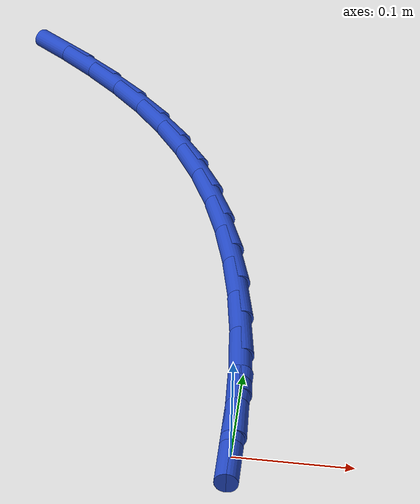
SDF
<sdf version="1.6">
 <world name="default">
  <model name="ground_plane">
   <static>1</static>
   <link name="link">
    <collision name="collision">
     <geometry><plane><normal>0 0 1</normal><size>100 100</size></plane></geometry>
     <surface><friction><ode><mu>100</mu><mu2>50</mu2></ode></friction></surface>
    </collision>
    <visual name="visual">
     <cast_shadows>0</cast_shadows>
     <geometry><plane><normal>0 0 1</normal><size>100 100</size></plane></geometry>
     <material>
      <script><uri>file://media/materials/scripts/gazebo.material</uri><name>Gazebo/WhiteGlow</name></script>
     </material>
    </visual>
   </link>
  </model>
  <model name="line">
   <link name="link_0">
    <pose>2.6020852139652106e-17 5.551115123125783e-17 0.01 0 1.57 -1.5619485043957753</pose>
    <collision name="collision">
     <geometry><cylinder><radius>0.01</radius><length>0.08</length></cylinder></geometry>
    </collision>
    <visual name="visual">
     <material>
      <script><name>Gazebo/Blue</name><uri>file://media/materials/scripts/gazebo.material</uri></script>
     </material>
     <geometry><cylinder><radius>0.01</radius><length>0.08</length></cylinder></geometry>
    </visual>
   </link>
   <link name="link_1">
    <pose>-0.00045022236933538456 0.050883776885256846 0.01 0 1.57 -1.5179258800553068</pose>
    <collision name="collision">
     <geometry><cylinder><radius>0.01</radius><length>0.08</length></cylinder></geometry>
    </collision>
    <visual name="visual">
     <material>
      <script><name>Gazebo/Blue</name><uri>file://media/materials/scripts/gazebo.material</uri></script>
     </material>
     <geometry><cylinder><radius>0.01</radius><length>0.08</length></cylinder></geometry>
    </visual>
   </link>
   <link name="link_2">
    <pose>-0.003139674134285478 0.1017050870169513 0.01 0 1.57 -1.4705431116117427</pose>
    <collision name="collision">
     <geometry><cylinder><radius>0.01</radius><length>0.08</length></cylinder></geometry>
    </collision>
    <visual name="visual">
     <material>
      <script><name>Gazebo/Blue</name><uri>file://media/materials/scripts/gazebo.material</uri></script>
     </material>
     <geometry><cylinder><radius>0.01</radius><length>0.08</length></cylinder></geometry>
    </visual>
   </link>
   <link name="link_3">
    <pose>-0.00821534779071211 0.15216389314239184 0.01 0 1.57 -1.4191687556872987</pose>
    <collision name="collision">
     <geometry><cylinder><radius>0.01</radius><length>0.08</length></cylinder></geometry>
    </collision>
    <visual name="visual">
     <material>
      <script><name>Gazebo/Blue</name><uri>file://media/materials/scripts/gazebo.material</uri></script>
     </material>
     <geometry><cylinder><radius>0.01</radius><length>0.08</length></cylinder></geometry>
    </visual>
   </link>
   <link name="link_4">
    <pose>-0.01582423583447712 0.2019601580088869 0.01 0 1.57 -1.3631369850084192</pose>
    <collision name="collision">
     <geometry><cylinder><radius>0.01</radius><length>0.08</length></cylinder></geometry>
    </collision>
    <visual name="visual">
     <material>
      <script><name>Gazebo/Blue</name><uri>file://media/materials/scripts/gazebo.material</uri></script>
     </material>
     <geometry><cylinder><radius>0.01</radius><length>0.08</length></cylinder></geometry>
    </visual>
   </link>
   <link name="link_5">
    <pose>-0.02611333076144237 0.25079384436374497 0.01 0 1.57 -1.3017608858675596</pose>
    <collision name="collision">
     <geometry><cylinder><radius>0.01</radius><length>0.08</length></cylinder></geometry>
    </collision>
    <visual name="visual">
     <material>
      <script><name>Gazebo/Blue</name><uri>file://media/materials/scripts/gazebo.material</uri></script>
     </material>
     <geometry><cylinder><radius>0.01</radius><length>0.08</length></cylinder></geometry>
    </visual>
   </link>
   <link name="link_6">
    <pose>-0.039229625067469714 0.2983649149542743 0.01 0 1.57 -1.2343627922332197</pose>
    <collision name="collision">
     <geometry><cylinder><radius>0.01</radius><length>0.08</length></cylinder></geometry>
    </collision>
    <visual name="visual">
     <material>
      <script><name>Gazebo/Blue</name><uri>file://media/materials/scripts/gazebo.material</uri></script>
     </material>
     <geometry><cylinder><radius>0.01</radius><length>0.08</length></cylinder></geometry>
    </visual>
   </link>
   <link name="link_7">
    <pose>-0.05532011124842101 0.3443733325277836 0.01 0 1.57 -1.1603284807588692</pose>
    <collision name="collision">
     <geometry><cylinder><radius>0.01</radius><length>0.08</length></cylinder></geometry>
    </collision>
    <visual name="visual">
     <material>
      <script><name>Gazebo/Blue</name><uri>file://media/materials/scripts/gazebo.material</uri></script>
     </material>
     <geometry><cylinder><radius>0.01</radius><length>0.08</length></cylinder></geometry>
    </visual>
   </link>
   <link name="link_8">
    <pose>-0.07453178180015811 0.3885190598315812 0.01 0 1.57 -1.0791915962113092</pose>
    <collision name="collision">
     <geometry><cylinder><radius>0.01</radius><length>0.08</length></cylinder></geometry>
    </collision>
    <visual name="visual">
     <material>
      <script><name>Gazebo/Blue</name><uri>file://media/materials/scripts/gazebo.material</uri></script>
     </material>
     <geometry><cylinder><radius>0.01</radius><length>0.08</length></cylinder></geometry>
    </visual>
   </link>
   <link name="link_9">
    <pose>-0.09701162921854284 0.43050205961297533 0.01 0 1.57 -0.992655646375856</pose>
    <collision name="collision">
     <geometry><cylinder><radius>0.01</radius><length>0.08</length></cylinder></geometry>
    </collision>
    <visual name="visual">
     <material>
      <script><name>Gazebo/Blue</name><uri>file://media/materials/scripts/gazebo.material</uri></script>
     </material>
     <geometry><cylinder><radius>0.01</radius><length>0.08</length></cylinder></geometry>
    </visual>
   </link>
   <link name="link_10">
    <pose>-0.12284549626768587 0.47009332811488547 0.01 0 1.57 -0.9110749012230361</pose>
    <collision name="collision">
     <geometry><cylinder><radius>0.01</radius><length>0.08</length></cylinder></geometry>
    </collision>
    <visual name="visual">
     <material>
      <script><name>Gazebo/Blue</name><uri>file://media/materials/scripts/gazebo.material</uri></script>
     </material>
     <geometry><cylinder><radius>0.01</radius><length>0.08</length></cylinder></geometry>
    </visual>
   </link>
   <link name="link_11">
    <pose>-0.15180507192361753 0.5074287927269041 0.01 0 1.57 -0.8386515433862962</pose>
    <collision name="collision">
     <geometry><cylinder><radius>0.01</radius><length>0.08</length></cylinder></geometry>
    </collision>
    <visual name="visual">
     <material>
      <script><name>Gazebo/Blue</name><uri>file://media/materials/scripts/gazebo.material</uri></script>
     </material>
     <geometry><cylinder><radius>0.01</radius><length>0.08</length></cylinder></geometry>
    </visual>
   </link>
   <link name="link_12">
    <pose>-0.18356143931973953 0.5427612478219469 0.01 0 1.57 -0.7759317423718946</pose>
    <collision name="collision">
     <geometry><cylinder><radius>0.01</radius><length>0.08</length></cylinder></geometry>
    </collision>
    <visual name="visual">
     <material>
      <script><name>Gazebo/Blue</name><uri>file://media/materials/scripts/gazebo.material</uri></script>
     </material>
     <geometry><cylinder><radius>0.01</radius><length>0.08</length></cylinder></geometry>
    </visual>
   </link>
   <link name="link_13">
    <pose>-0.21778563608416898 0.5763435406333322 0.01 0 1.57 -0.7229781396319033</pose>
    <collision name="collision">
     <geometry><cylinder><radius>0.01</radius><length>0.08</length></cylinder></geometry>
    </collision>
    <visual name="visual">
     <material>
      <script><name>Gazebo/Blue</name><uri>file://media/materials/scripts/gazebo.material</uri></script>
     </material>
     <geometry><cylinder><radius>0.01</radius><length>0.08</length></cylinder></geometry>
    </visual>
   </link>
   <link name="link_14">
    <pose>-0.2541486998450228 0.608428518394378 0.01 0 1.57 -0.6795485020725676</pose>
    <collision name="collision">
     <geometry><cylinder><radius>0.01</radius><length>0.08</length></cylinder></geometry>
    </collision>
    <visual name="visual">
     <material>
      <script><name>Gazebo/Blue</name><uri>file://media/materials/scripts/gazebo.material</uri></script>
     </material>
     <geometry><cylinder><radius>0.01</radius><length>0.08</length></cylinder></geometry>
    </visual>
   </link>
   <link name="link_140">
    <pose>1.734723475976807e-17 -8.326672684688674e-17 0.01 0 1.57 -1.5626200242243804</pose>
    <collision name="collision">
     <geometry><cylinder><radius>0.01</radius><length>0.08</length></cylinder></geometry>
    </collision>
    <visual name="visual">
     <material>
      <script><name>Gazebo/Blue</name><uri>file://media/materials/scripts/gazebo.material</uri></script>
     </material>
     <geometry><cylinder><radius>0.01</radius><length>0.08</length></cylinder></geometry>
    </visual>
   </link>
   <link name="link_141">
    <pose>-0.0004162642850532826 0.05090993213610164 0.01 0 1.57 -1.5626200242243802</pose>
    <collision name="collision">
     <geometry><cylinder><radius>0.01</radius><length>0.08</length></cylinder></geometry>
    </collision>
    <visual name="visual">
     <material>
      <script><name>Gazebo/Blue</name><uri>file://media/materials/scripts/gazebo.material</uri></script>
     </material>
     <geometry><cylinder><radius>0.01</radius><length>0.08</length></cylinder></geometry>
    </visual>
   </link>
  </model>
 </world>
</sdf>
